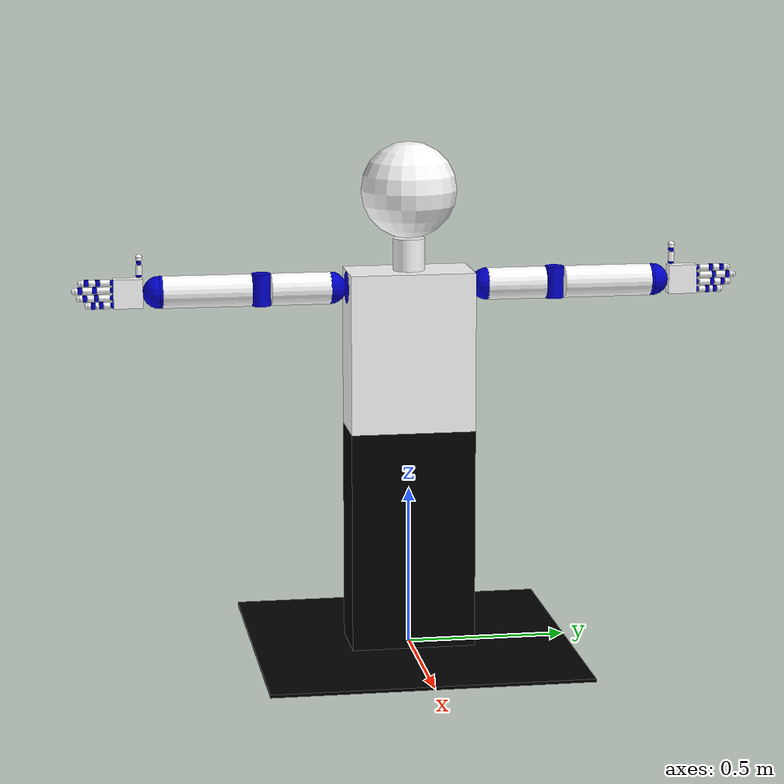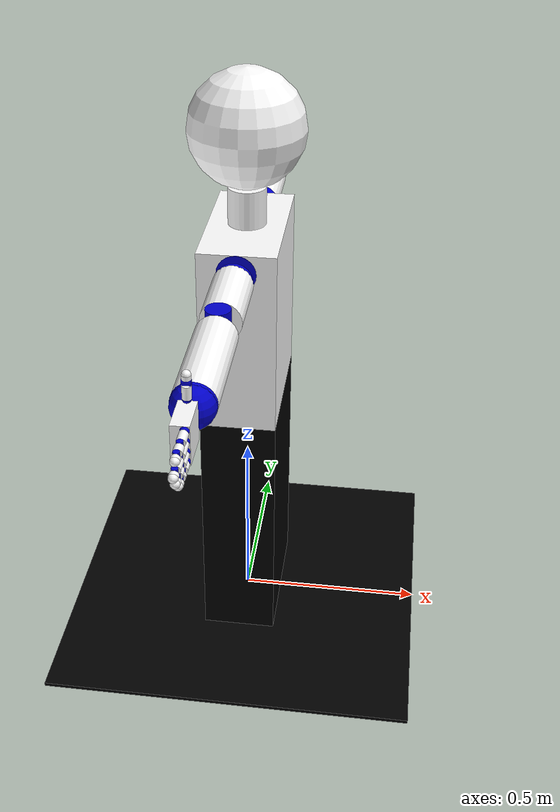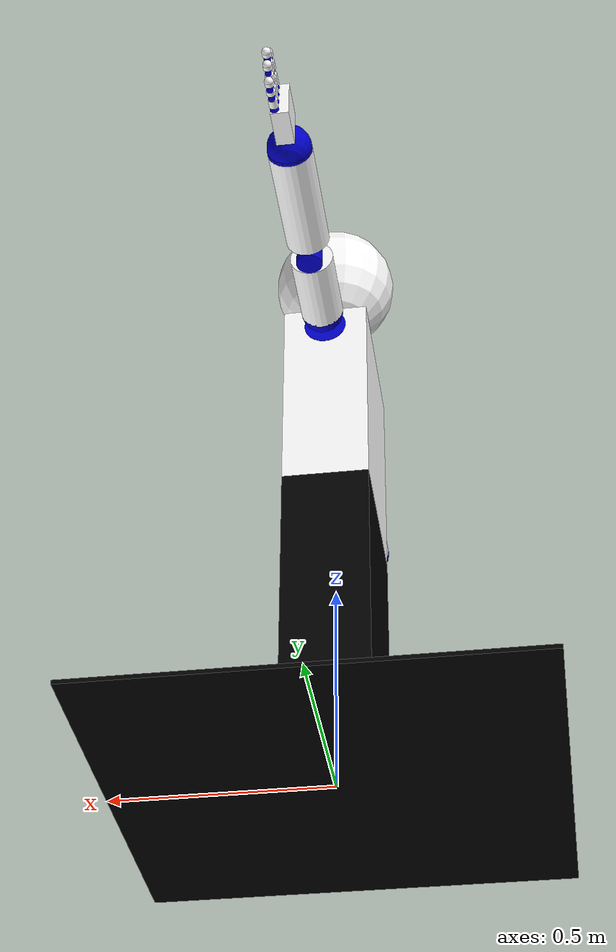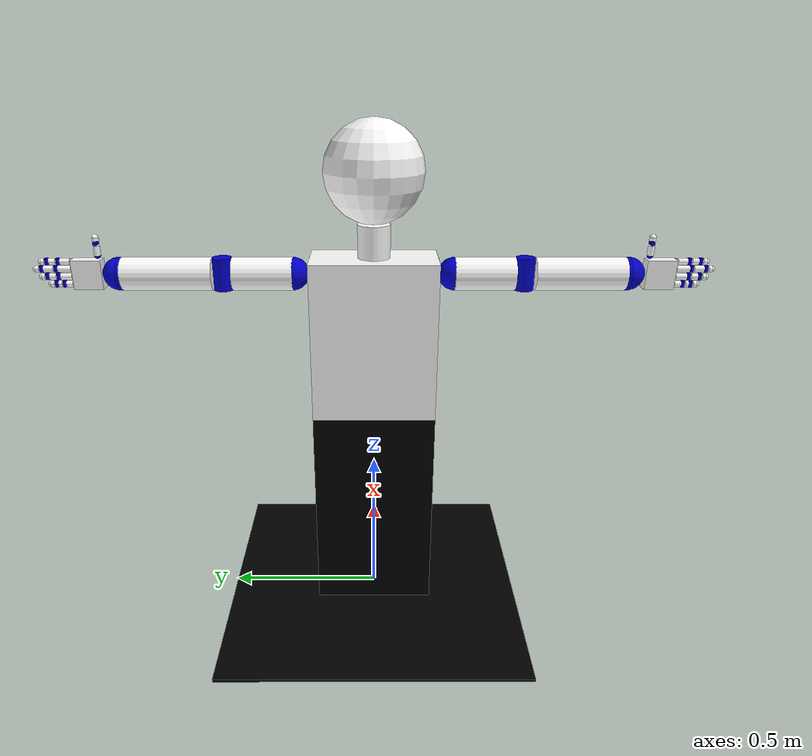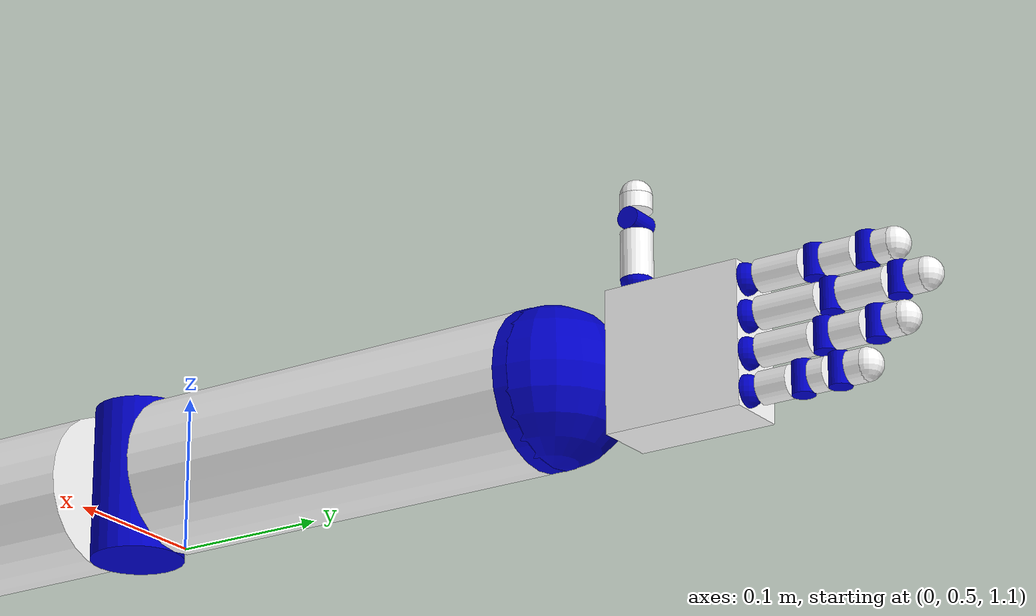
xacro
<?xml version="1.0"?>
<robot name="signbot"
       xmlns:xacro="http://www.ros.org/wiki/xacro" >

<xacro:include filename="$(find signbot_f_description)/urdf/macros.xacro" />

<!-- ****************************** MODEL **************************************** -->
<xacro:link_shape name="base_link" color="Black"  mass="${HEAVYWEIGHT}" >
                  <origin xyz="0 0 0" rpy="0 0 0" />
                  <box size="1 1 0.01" />
</xacro:link_shape>
<xacro:gazebo_black name="base_link" />

<!-- ************************** LEG TOSRO AND HEAD ******************************* -->
<xacro:torso_head parentl_name="base_link" />

<!-- ****************************** RIGHT SIDE ************************************ -->

<!-- ********************************** ARM *************************************** -->
  <xacro:arm side="r"
             axis_y_signal="-1"
             lower="0"
             upper="1" />
<!-- *********************************** PALM ************************************* -->
  <xacro:palm side="r"
              axis_y_signal="-1" />
<!-- ************************************ THUMB *********************************** -->
  <xacro:thumb_finger side="r"
                      axis_y_signal="-1"
                      lower="0"
                      upper="1" />
<!-- **************** FOUR FINGERS (INDEX, MIDDLE, THIRD, LITTLE) ****************** -->
  <xacro:generic_finger name= "index"
                        side="r"
                        axis_y_signal="-1"
                        lower="0"
                        upper="1"
                        ref_point="${(PALM_LENGTH/2)-GENERIC_FINGERS_RADIUS}"
                        bottom_length="${INDEX_BOTTOM_LENGTH}"
                        middle_length="${INDEX_MIDDLE_LENGTH}"
                        top_length="${INDEX_TOP_LENGTH}" />

  <xacro:generic_finger name= "middle"
                        side="r"
                        axis_y_signal="-1"
                        lower="0"
                        upper="1"
                        ref_point="${(PALM_LENGTH/2)-(GENERIC_FINGERS_RADIUS*2)-INTERVAL_BETWEEN_FINGERS-GENERIC_FINGERS_RADIUS}"
                        bottom_length="${MIDDLE_BOTTOM_LENGTH}"
                        middle_length="${MIDDLE_MIDDLE_LENGTH}"
                        top_length="${MIDDLE_TOP_LENGTH}" />

  <xacro:generic_finger name= "third"
                        side="r"
                        axis_y_signal="-1"
                        lower="0"
                        upper="1"
                        ref_point="${(-PALM_LENGTH/2)+(GENERIC_FINGERS_RADIUS*2)+INTERVAL_BETWEEN_FINGERS+GENERIC_FINGERS_RADIUS}"
                        bottom_length="${THIRD_BOTTOM_LENGTH}"
                        middle_length="${THIRD_MIDDLE_LENGTH}"
                        top_length="${THIRD_TOP_LENGTH}" />

  <xacro:generic_finger name= "little"
                        side="r"
                        axis_y_signal="-1"
                        lower="0"
                        upper="1"
                        ref_point="${(-PALM_LENGTH/2)+GENERIC_FINGERS_RADIUS}"
                        bottom_length="${LITTLE_BOTTOM_LENGTH}"
                        middle_length="${LITTLE_MIDDLE_LENGTH}"
                        top_length="${LITTLE_TOP_LENGTH}" />

<!-- ****************************** LEFT SIDE ************************************* -->

<!-- ********************************** ARM *************************************** -->
  <xacro:arm side="l"
             axis_y_signal="1"
             lower="1"
             upper="0" />
<!-- *********************************** PALM ************************************* -->
  <xacro:palm side="l"
              axis_y_signal="1" />
<!-- ************************************ THUMB *********************************** -->
  <xacro:thumb_finger side="l"
                      axis_y_signal="1"
                      lower="1"
                      upper="0" />
<!-- ********************* FOUR FINGERS(INDEX, MIDDLE, THIRD, LITTLE) ************* -->

  <xacro:generic_finger name= "index"
                        side="l"
                        axis_y_signal="1"
                        lower="1"
                        upper="0"
                        ref_point="${(PALM_LENGTH/2)-GENERIC_FINGERS_RADIUS}"
                        bottom_length="${INDEX_BOTTOM_LENGTH}"
                        middle_length="${INDEX_MIDDLE_LENGTH}"
                        top_length="${INDEX_TOP_LENGTH}" />

  <xacro:generic_finger name= "middle"
                        side="l"
                        axis_y_signal="1"
                        lower="1"
                        upper="0"
                        ref_point="${(PALM_LENGTH/2)-GENERIC_FINGERS_RADIUS*3-INTERVAL_BETWEEN_FINGERS}"
                        bottom_length="${MIDDLE_BOTTOM_LENGTH}"
                        middle_length="${MIDDLE_MIDDLE_LENGTH}"
                        top_length="${MIDDLE_TOP_LENGTH}" />

  <xacro:generic_finger name= "third"
                        side="l"
                        axis_y_signal="1"
                        lower="1"
                        upper="0"
                        ref_point="${(PALM_LENGTH/2)-GENERIC_FINGERS_RADIUS*5-INTERVAL_BETWEEN_FINGERS*2}"
                        bottom_length="${THIRD_BOTTOM_LENGTH}"
                        middle_length="${THIRD_MIDDLE_LENGTH}"
                        top_length="${THIRD_TOP_LENGTH}" />

  <xacro:generic_finger name= "little"
                        side="l"
                        axis_y_signal="1"
                        lower="1"
                        upper="0"
                        ref_point="${(PALM_LENGTH/2)-GENERIC_FINGERS_RADIUS*7-INTERVAL_BETWEEN_FINGERS*3}"
                        bottom_length="${LITTLE_BOTTOM_LENGTH}"
                        middle_length="${LITTLE_MIDDLE_LENGTH}"
                        top_length="${LITTLE_TOP_LENGTH}" />

</robot>

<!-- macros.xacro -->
<robot xmlns:xacro="http://www.ros.org/wiki/xacro">

<xacro:include filename="$(find signbot_f_description)/urdf/signbot.gazebo" />
<xacro:include filename="$(find signbot_f_description)/urdf/materials.xacro" />

<!-- **************************************** Constants ***************************************** -->
  <property name="PI" value="3.14159"/>
  <property name="TOLERANCE" value="0.001" />
  <property name="HEAVYWEIGHT" value="50" />
  <property name="LIGHTWEIGHT" value="1" />
<!-- Legs Constants -->
  <property name="LEG_DEPTH" value=".20" />
  <property name="LEG_LENGTH" value=".39"/>
  <property name="LEG_HEIGHT" value=".70"/>
<!-- Torso Constants -->
  <property name="TORSO_DEPTH" value=".20" />
  <property name="TORSO_LENGTH" value=".39"/>
  <property name="TORSO_HEIGHT" value=".50"/>
<!-- Neck constants -->
  <property name="NECK_RADIUS" value="0.05" />
  <property name="NECK_LENGTH" value="0.1"/>
<!-- head constants -->
  <property name="HEAD_RADIUS" value="0.15"/>
<!-- arm link properties -->
  <property name="SHOULDER_LENGTH" value="0.001" />
  <property name="ARM_RADIUS" value="0.05" />
  <property name="ARM_LENGTH" value="${0.20-(ELBOW_RADIUS/2)}" />
  <property name="ELBOW_RADIUS" value="0.03" />
  <property name="ELBOW_LENGTH" value="${2*ARM_RADIUS}" />
  <property name="FOREARM_LENGTH" value="${0.29-(ELBOW_RADIUS/2)}" />
<!-- wrist link properties -->
  <property name="WRIST_RADIUS" value="${ARM_RADIUS}" />
  <property name="WRIST_LENGTH" value="0.01" />
<!-- palm link properties -->
  <property name="PALM_DEPTH" value="0.04" />
  <property name="PALM_LENGTH" value="0.09"/>
  <property name="PALM_HEIGHT" value="0.09"/>
<!-- generic fingers properties -->
  <property name="GENERIC_FINGERS_RADIUS" value="0.01" />
  <property name="GENERIC_FINGERS_X" value="0.01" />
  <property name="INTERVAL_BETWEEN_FINGERS" value="0.003" />
  <property name="GENERIC_FINGER_KNUCKLE_RADIUS" value="0.007" />
<!-- thumb finger properties -->
  <property name="THUMB_BOTTOM_LENGTH" value="0.03" />
  <property name="THUMB_TOP_LENGTH" value="${GENERIC_FINGERS_RADIUS}" />
<!-- index finger properties -->
  <property name="INDEX_BOTTOM_LENGTH" value="0.03" />
  <property name="INDEX_MIDDLE_LENGTH" value="0.02" />
  <property name="INDEX_TOP_LENGTH" value="${GENERIC_FINGERS_RADIUS}" />
<!--  middle finger properties  -->
  <property name="MIDDLE_BOTTOM_LENGTH" value="0.04" />
  <property name="MIDDLE_MIDDLE_LENGTH" value="0.03" />
  <property name="MIDDLE_TOP_LENGTH" value="${GENERIC_FINGERS_RADIUS}" />
<!--  third finger properties  -->
  <property name="THIRD_BOTTOM_LENGTH" value="0.035" />
  <property name="THIRD_MIDDLE_LENGTH" value="0.02" />
  <property name="THIRD_TOP_LENGTH" value="${GENERIC_FINGERS_RADIUS}" />
<!--  little finger properties  -->
  <property name="LITTLE_BOTTOM_LENGTH" value="0.02" />
  <property name="LITTLE_MIDDLE_LENGTH" value="0.01" />
  <property name="LITTLE_TOP_LENGTH" value="${GENERIC_FINGERS_RADIUS}" />

<!-- ***************************/ Blocks of code ************************************************ -->
<xacro:macro name="inertial_matrix" params="mass">
  <inertial>
    <mass value="${mass}" />
    <inertia ixx="1.0" ixy="0.0" ixz="0.0" iyy="0.5" iyz="0.0" izz="1.0" />
  </inertial>
</xacro:macro>

<xacro:macro name="transmission_block" params="joint_name">
  <transmission name="tran1">
    <type>transmission_interface/SimpleTransmission</type>
    <joint name="${joint_name}">
      <hardwareInterface>PositionJointInterface</hardwareInterface>
    </joint>
    <actuator name="motor1">
      <hardwareInterface>PositionJointInterface</hardwareInterface>
      <mechanicalReduction>1</mechanicalReduction>
    </actuator>
  </transmission>
</xacro:macro>
<!-- ****************************** LINK SHAPES	************************************************* -->
<xacro:macro name="link_shape" params="name color *origin *shape mass">
  <link name="${name}">
    <visual>
       <xacro:insert_block name="origin" />
        <geometry>
            <xacro:insert_block name="shape" />
        </geometry>
        <material name="${color}" />
    </visual>
    <collision>
       <xacro:insert_block name="origin" />
        <geometry>
            <xacro:insert_block name="shape" />
        </geometry>
    </collision>
    <xacro:inertial_matrix mass="${mass}"/>
  </link>
</xacro:macro>

<!-- ************************************** TORSO_HEAD ****************************************** -->
<xacro:macro name="torso_head" params="parentl_name">
  <joint name="ankle_joint" type="fixed">
     <origin xyz="0 0 0" rpy="0 0 0" />
     <parent link="${parentl_name}"/>
     <child link="legs_link"/>
  </joint>

  <xacro:link_shape name="legs_link" color="Black"  mass="${HEAVYWEIGHT}" >
                    <origin xyz="0 0 ${LEG_HEIGHT/2}" rpy="0 0 0" />
                    <box size="${LEG_DEPTH} ${LEG_LENGTH} ${LEG_HEIGHT}" />
  </xacro:link_shape>
  <xacro:gazebo_black name="legs_link" />
  <!-- ************************************ TORSO LINK ****************************************** -->
  <joint name="waist_joint" type="fixed">
    <origin xyz="0 0 ${LEG_HEIGHT}" rpy="0 0 0" />
    <parent link="legs_link"/>
    <child link="torso_link"/>
  </joint>

  <xacro:link_shape name="torso_link" color="White" mass="${LIGHTWEIGHT}" >
        <origin xyz="0 0 ${TORSO_HEIGHT/2}" rpy="0 0 0" />
        <box size="${TORSO_DEPTH} ${TORSO_LENGTH} ${TORSO_HEIGHT}" />
  </xacro:link_shape>
  <xacro:gazebo_white name="torso_link" />
  <!-- ************************************** NECK LINK ***************************************** -->
  <joint name="neck_joint" type="fixed">
    <origin xyz="0 0 ${TORSO_HEIGHT}" rpy="0 0 0" />
    <parent link="torso_link"/>
    <child link="neck_link"/>
  </joint>

  <xacro:link_shape name="neck_link" color="White" mass="${LIGHTWEIGHT}">
        <origin xyz="0 0 ${NECK_LENGTH/2}" rpy="0 0 0" />
        <cylinder radius="${NECK_RADIUS}" length="${NECK_LENGTH}"/>
  </xacro:link_shape>
  <xacro:gazebo_white name="neck_link" />
  <!-- ************************************* HEAD LINK ****************************************** -->
  <joint name="head_joint" type="fixed">
     <origin xyz="0 0 ${NECK_LENGTH}" rpy="0 0 0" />
     <parent link="neck_link"/>
     <child link="head_link"/>
  </joint>

  <xacro:link_shape name="head_link" color="White" mass="${LIGHTWEIGHT}">
        <origin xyz="0 0 ${HEAD_RADIUS}" rpy="0 0 0" />
        <sphere radius="${HEAD_RADIUS}"/>
  </xacro:link_shape>
  <xacro:gazebo_white name="head_link" />

</xacro:macro>

<!-- ****************************************** ARMS ******************************************** -->
<xacro:macro name="arm" params="side axis_y_signal lower upper" >
<!-- ********************************* SHOULDER1 LINK ******************************************* -->
  <xacro:link_shape name="${side}_shoulder1_link" color="Blue" mass="${LIGHTWEIGHT}">
        <origin xyz="0 0 0" rpy="${PI/2} 0 0" />
         <cylinder radius="${ARM_RADIUS}" length="${SHOULDER_LENGTH}"/>
  </xacro:link_shape>
  <xacro:gazebo_blue name="${side}_shoulder1_link" />

  <joint name="${side}_shoulder1_joint" type="revolute">
    <parent link="torso_link"/>
    <child link="${side}_shoulder1_link"/>
    <origin xyz="0 ${axis_y_signal*((TORSO_LENGTH/2)+(SHOULDER_LENGTH/2))} ${TORSO_HEIGHT-ARM_RADIUS}"/>
    <axis xyz="0 1 0"/>
    <limit effort="1000.0" lower="0" upper="${PI/2}" velocity="0.5"/>
    <dynamics damping="50" friction="1"/>
  </joint>
<!-- ********************************* SHOULDER2 LINK **************************************** -->
  <xacro:link_shape name="${side}_shoulder2_link" color="Blue" mass="${LIGHTWEIGHT}">
        <origin xyz="0 0 0" rpy="0 0 0" />
        <sphere radius="${ARM_RADIUS}"/>
  </xacro:link_shape>
  <xacro:gazebo_blue name="${side}_shoulder2_link" />

  <joint name="${side}_shoulder2_joint" type="revolute">
    <parent link="${side}_shoulder1_link"/>
    <child link="${side}_shoulder2_link"/>
    <origin xyz="0 ${axis_y_signal*((SHOULDER_LENGTH/2)+ARM_RADIUS)} 0"/>
    <axis xyz="0 0 1"/>
    <limit effort="1000.0" lower="${lower*(-1*(PI/2))}" upper="${upper*(PI/2)}" velocity="0.5"/>
    <dynamics damping="50" friction="1"/>
  </joint>
<!-- ****************************************** ARM ****************************************** -->
  <xacro:link_shape name="${side}_arm_link" color="White" mass="${LIGHTWEIGHT}">
        <origin rpy="${PI/2} 0 0" xyz="0 ${axis_y_signal*(ARM_LENGTH/2)} 0"/>
        <cylinder radius="${ARM_RADIUS}" length="${ARM_LENGTH}"/>
  </xacro:link_shape>
  <xacro:gazebo_white name="${side}_arm_link" />

  <joint name="${side}_arm_joint" type="revolute">
    <parent link="${side}_shoulder2_link"/>
    <child link="${side}_arm_link"/>
    <origin xyz="0 0 0"/>
    <axis xyz="1 0 0"/>
    <limit effort="1000.0" lower="${(-1)*(PI/2)}" upper="${(PI/2)}" velocity="0.5"/>
    <dynamics damping="50" friction="1"/>
  </joint>
<!-- ****************************************** ELBOW ****************************************** -->
  <xacro:link_shape name="${side}_elbow_link" color="Blue" mass="${LIGHTWEIGHT}">
        <origin rpy="0 0 0" xyz="0 0 0"/>
        <cylinder radius="${ELBOW_RADIUS}" length="${ELBOW_LENGTH}"/>
  </xacro:link_shape>
  <xacro:gazebo_blue name="${side}_elbow_link" />

  <joint name="${side}_elbow1_joint" type="revolute">
    <parent link="${side}_arm_link"/>
    <child link="${side}_elbow_link"/>
    <origin xyz="0 ${axis_y_signal*(ARM_LENGTH+ELBOW_RADIUS)} 0"/>
    <axis xyz="0 0 1"/>
    <limit effort="1000.0" lower="${lower*-1*(PI/2)}" upper="${upper*(PI/2)}" velocity="0.5"/>
    <dynamics damping="50" friction="1"/>
  </joint>
<!-- ****************************************** FOREARM **************************************** -->
  <xacro:link_shape name="${side}_forearm_link" color="White" mass="${LIGHTWEIGHT}">
         <origin rpy="${PI/2} 0 0" xyz="0 ${axis_y_signal*(FOREARM_LENGTH/2)} 0"/>
         <cylinder radius="${ARM_RADIUS}" length="${FOREARM_LENGTH}"/>
  </xacro:link_shape>
  <xacro:gazebo_white name="${side}_forearm_link" />

  <joint name="${side}_elbow2_joint" type="fixed">
    <parent link="${side}_elbow_link"/>
    <child link="${side}_forearm_link"/>
    <origin xyz="0 ${axis_y_signal*(ELBOW_RADIUS)} 0"/>
  </joint>
<!-- ************************************** TRANSMICION ROS CONTROL **************************** -->
          <xacro:transmission_block joint_name="${side}_shoulder1_joint"/>
          <xacro:transmission_block joint_name="${side}_shoulder2_joint"/>
          <xacro:transmission_block joint_name="${side}_arm_joint"/>
          <xacro:transmission_block joint_name="${side}_elbow1_joint"/>

</xacro:macro>

<!-- ****************************************** PALM ******************************************** -->
<xacro:macro name="palm" params="side axis_y_signal">
<!-- ***************************************** WIRST1 ******************************************* -->
  <xacro:link_shape name="${side}_wirst1_l" color="Blue" mass="${LIGHTWEIGHT}">
        <origin xyz="0 0 0" rpy="${PI/2} 0 0" />
        <cylinder radius="${WRIST_RADIUS}" length="${WRIST_LENGTH}"/>
  </xacro:link_shape>
  <xacro:gazebo_blue name="${side}_wirst1_l" />

  <joint name="${side}_wirst1_j" type="revolute">
    <parent link="${side}_forearm_link"/>
    <child link="${side}_wirst1_l"/>
    <origin xyz="0 ${axis_y_signal*(FOREARM_LENGTH+(WRIST_LENGTH/2))} 0"/>
    <axis xyz="0 1 0"/>
    <limit effort="1000.0" lower="0" upper="${PI/2}" velocity="0.5"/>
    <dynamics damping="50" friction="1"/>
  </joint>
<!-- ***************************************** WIRST2 ******************************************* -->
  <xacro:link_shape name="${side}_wirst2_l" color="Blue" mass="${LIGHTWEIGHT}">
        <origin xyz="0 0 0" rpy="0 0 0" />
        <sphere radius="${WRIST_RADIUS}"/>
  </xacro:link_shape>
  <xacro:gazebo_blue name="${side}_wirst2_l" />

  <joint name="${side}_wirst2_j" type="revolute">
    <parent link="${side}_wirst1_l"/>
    <child link="${side}_wirst2_l"/>
    <origin xyz="0 ${axis_y_signal*(WRIST_LENGTH/2)} 0"/>
    <axis xyz="1 0 0"/>
    <limit effort="1000.0" lower="-${PI/4}" upper="${PI/4}" velocity="0.5"/>
    <dynamics damping="50" friction="1"/>
  </joint>
<!-- ****************************************** PALM LINK *************************************** -->
  <xacro:link_shape name="${side}_palm_l" color="White" mass="${LIGHTWEIGHT}">
        <origin rpy="${PI/2} 0 0" xyz="0 ${axis_y_signal*PALM_LENGTH/2} 0 "/>
        <box size="${PALM_DEPTH} ${PALM_LENGTH} ${PALM_HEIGHT}"/>
  </xacro:link_shape>
  <xacro:gazebo_white name="${side}_palm_l" />

  <joint name="${side}_wirst3_j" type="revolute">
    <parent link="${side}_wirst2_l"/>
    <child link="${side}_palm_l"/>
    <origin xyz="0 ${axis_y_signal*WRIST_RADIUS} 0"/>
    <axis xyz="0 0 1"/>
    <limit effort="1000.0" lower="-${PI/4}" upper="${PI/4}" velocity="0.5"/>
    <dynamics damping="50" friction="1"/>
  </joint>
<!--************************************** TRANSMICION ROS CONTROL ****************************** -->
   <xacro:transmission_block joint_name="${side}_wirst1_j"/>
   <xacro:transmission_block joint_name="${side}_wirst2_j"/>
   <xacro:transmission_block joint_name="${side}_wirst3_j"/>

</xacro:macro>

<!-- ********************************** THUMB FINGER ******************************************** -->
<!-- ****************************** BOT KNICKLE ************************************************* -->
<xacro:macro name="thumb_finger" params="side axis_y_signal lower upper ">
    <xacro:link_shape name="${side}_bottom_knuckle_thumb_l" color="Blue" mass="${LIGHTWEIGHT}">
        <origin rpy="0 0 0" xyz="0 0 0"/>
        <sphere radius="${GENERIC_FINGERS_RADIUS}" />
    </xacro:link_shape>
    <xacro:gazebo_blue name="${side}_bottom_knuckle_thumb_l" />

    <joint name="${side}_bottom_knuckle1_thumb_j" type="revolute">
        <parent link="${side}_palm_l"/>
        <child link="${side}_bottom_knuckle_thumb_l"/>
        <origin xyz="0 ${axis_y_signal*GENERIC_FINGERS_RADIUS} ${(PALM_LENGTH/2)+GENERIC_FINGERS_RADIUS+TOLERANCE}" />
        <axis xyz="1 0 0"/>
        <limit effort="1000.0" lower="-${lower*(PI/2)}" upper="${upper*(PI/2)}" velocity="0.5"/>
        <dynamics damping="50" friction="1"/>
    </joint>
<!-- ********************************** BOT THUMB ********************************************** -->
    <xacro:link_shape name="${side}_bottom_thumb_l" color="White" mass="${LIGHTWEIGHT}">
        <origin rpy="0 0 0" xyz="0 0 ${THUMB_BOTTOM_LENGTH/2}"/>
        <cylinder radius="${GENERIC_FINGERS_RADIUS}" length="${THUMB_BOTTOM_LENGTH}"/>
    </xacro:link_shape>
    <xacro:gazebo_white name="${side}_bottom_thumb_l" />

    <joint name="${side}_bottom_knuckle2_thumb_j" type="revolute">
        <parent link="${side}_bottom_knuckle_thumb_l"/>
        <child link="${side}_bottom_thumb_l"/>
        <origin xyz="0 0 0"/>
        <axis xyz="0 1 0"/>
        <limit effort="1000.0" lower="0" upper="${PI/2}" velocity="0.5"/>
        <dynamics damping="50" friction="1"/>
    </joint>
<!-- *********************************** MIDDLE KNUCKLE ****************************************** -->
      <xacro:link_shape name="${side}_middle_knuckle_thumb_l" color="Blue" mass="${LIGHTWEIGHT}" >
          <origin rpy="0 ${PI/2} 0" xyz="0 0 0"/>
          <cylinder radius="${GENERIC_FINGER_KNUCKLE_RADIUS}" length="${GENERIC_FINGERS_RADIUS*2}"/>
      </xacro:link_shape>
      <xacro:gazebo_blue name="${side}_middle_knuckle_thumb_l" />

      <joint name="${side}_top_knuckle_thumb_j" type="revolute">
          <parent link="${side}_bottom_thumb_l"/>
          <child link="${side}_middle_knuckle_thumb_l"/>
          <origin xyz="0 0 ${THUMB_BOTTOM_LENGTH+GENERIC_FINGER_KNUCKLE_RADIUS}"/>
          <axis xyz="1 0 0"/>
          <limit effort="1000.0" lower="-${lower*(PI/2)}" upper="${upper*(PI/2)}" velocity="0.5"/>
          <dynamics damping="50" friction="1"/>
      </joint>
<!-- ************************************ MIDDLE THUMB ****************************************** -->
    <xacro:link_shape name="${side}_middle_thumb_l" color="White" mass="${LIGHTWEIGHT}" >
        <origin rpy="0 0 0" xyz="0 0 ${THUMB_TOP_LENGTH/2}"/>
        <cylinder radius="${GENERIC_FINGERS_RADIUS}" length="${THUMB_TOP_LENGTH}"/>
    </xacro:link_shape>
    <xacro:gazebo_white name="${side}_middle_thumb_l" />

    <joint name="${side}_middle_thumb_j" type="fixed">
        <parent link="${side}_middle_knuckle_thumb_l"/>
        <child link="${side}_middle_thumb_l"/>
        <origin xyz="0 0 ${GENERIC_FINGER_KNUCKLE_RADIUS}"/>
    </joint>
<!-- ************************************ TOP THUMB ******************************************** -->
    <xacro:link_shape name="${side}_top_thumb_l" color="White" mass="${LIGHTWEIGHT}">
        <origin rpy="0 0 0" xyz="0 0 0"/>
        <sphere radius="${GENERIC_FINGERS_RADIUS}"/>
    </xacro:link_shape>
    <xacro:gazebo_white name="${side}_top_thumb_l" />

    <joint name="${side}_top_thumb_j" type="fixed">
        <parent link="${side}_middle_thumb_l"/>
        <child link="${side}_top_thumb_l"/>
        <origin xyz="0 0 ${THUMB_TOP_LENGTH}"/>
    </joint>
<!-- ************************************ TRANSMICION ROS CONTROL ******************************* -->
   <xacro:transmission_block joint_name="${side}_bottom_knuckle1_thumb_j"/>
   <xacro:transmission_block joint_name="${side}_bottom_knuckle2_thumb_j"/>
   <xacro:transmission_block joint_name="${side}_top_knuckle_thumb_j"/>

</xacro:macro>

<xacro:macro name="generic_finger"
        params="name side axis_y_signal lower upper ref_point bottom_length middle_length top_length">
<!-- ***************************************** BOT KNUCKLE *************************************** -->
    <xacro:link_shape name="${side}_bottom_knuckle_${name}_l" color="Blue" mass="${LIGHTWEIGHT}">
        <origin rpy="0 0 0" xyz="0 0 0"/>
        <sphere radius="${GENERIC_FINGERS_RADIUS}" />
    </xacro:link_shape>
    <xacro:gazebo_blue name="${side}_bottom_knuckle_${name}_l" />

    <joint name="${side}_bottom_knuckle_${name}_j" type="revolute">
        <parent link="${side}_palm_l"/>
        <child link="${side}_bottom_knuckle_${name}_l"/>
        <origin xyz="${GENERIC_FINGERS_X} ${axis_y_signal*PALM_HEIGHT} ${ref_point}"/>
        <axis xyz="0 0 1"/>
        <limit effort="1000.0" lower="-${lower*(PI/2)}" upper="${upper*(PI/2)}" velocity="0.5"/>
        <dynamics damping="50" friction="1"/>
    </joint>
<!-- ************************************* BOT FINGER ******************************************** -->
    <xacro:link_shape name="${side}_bottom_${name}_l" color="White" mass="${LIGHTWEIGHT}">
        <origin rpy="${PI/2} 0 0" xyz="0 ${axis_y_signal*(bottom_length/2)} 0"/>
        <cylinder radius="${GENERIC_FINGERS_RADIUS}" length="${bottom_length}"/>
    </xacro:link_shape>
    <xacro:gazebo_white name="${side}_bottom_${name}_l" />

    <joint name="${side}_knuckle_upper_${name}_j" type="fixed">
        <parent link="${side}_bottom_knuckle_${name}_l"/>
        <child link="${side}_bottom_${name}_l"/>
        <origin xyz="0 ${axis_y_signal*GENERIC_FINGERS_RADIUS} 0"/>
    </joint>
<!-- ***************************************** MIDDLE KNUCKLE ************************************** -->
  <xacro:link_shape name="${side}_middle_knuckle_${name}_l" color="Blue" mass="${LIGHTWEIGHT}">
      <origin rpy="0 0 0" xyz="0 0 0"/>
      <cylinder radius="${GENERIC_FINGER_KNUCKLE_RADIUS}" length="${GENERIC_FINGERS_RADIUS*2}"/>
  </xacro:link_shape>
  <xacro:gazebo_blue name="${side}_middle_knuckle_${name}_l" />

  <joint name="${side}_middle_knuckle_${name}_j" type="revolute">
      <parent link="${side}_bottom_${name}_l"/>
      <child link="${side}_middle_knuckle_${name}_l"/>
      <origin xyz="0 ${axis_y_signal*(bottom_length+GENERIC_FINGER_KNUCKLE_RADIUS)} 0"/>
      <axis xyz="0 0 1"/>
  <limit effort="1000.0" lower="-${lower*(PI/2)}" upper="${upper*(PI/2)}" velocity="0.5"/>
  <dynamics damping="50" friction="1"/>
  </joint>
<!-- ***************************************** MIDDLE FINGER ************************************** -->
    <xacro:link_shape name="${side}_middle_${name}_l" color="White" mass="${LIGHTWEIGHT}">
        <origin rpy="${PI/2} 0 0" xyz="0 ${axis_y_signal*(middle_length/2)} 0"/>
        <cylinder radius="${GENERIC_FINGERS_RADIUS}" length="${middle_length}"/>
    </xacro:link_shape>
    <xacro:gazebo_white name="${side}_middle_${name}_l" />

    <joint name="${side}_middle_${name}_j" type="fixed">
        <parent link="${side}_middle_knuckle_${name}_l"/>
        <child link="${side}_middle_${name}_l"/>
        <origin xyz="0 ${axis_y_signal*(GENERIC_FINGER_KNUCKLE_RADIUS)} 0"/>
    </joint>
<!-- ***************************************** TOP KNUCKLE **************************************** -->
    <xacro:link_shape name="${side}_top_knuckle_${name}_l" color="Blue" mass="${LIGHTWEIGHT}">
        <origin rpy="0 0 0" xyz="0 0 0"/>
        <cylinder radius="${GENERIC_FINGER_KNUCKLE_RADIUS}" length="${GENERIC_FINGERS_RADIUS*2}"/>
    </xacro:link_shape>
    <xacro:gazebo_blue name="${side}_top_knuckle_${name}_l" />

    <joint name="${side}_top_knuckle_${name}_j" type="revolute">
        <parent link="${side}_middle_${name}_l"/>
        <child link="${side}_top_knuckle_${name}_l"/>
        <origin xyz="0 ${axis_y_signal*(middle_length+GENERIC_FINGER_KNUCKLE_RADIUS)} 0"/>
        <axis xyz="0 0 1"/>
        <limit effort="1000.0" lower="-${lower*(PI/2)}" upper="${upper*(PI/2)}" velocity="0.5"/>
        <dynamics damping="50" friction="1"/>
    </joint>
<!-- ******************************************** TOP FINGER ************************************** -->
    <xacro:link_shape name="${side}_top_${name}_l" color="White" mass="${LIGHTWEIGHT}">
        <origin rpy="${PI/2} 0 0" xyz="0 ${axis_y_signal*(top_length/2)} 0"/>
        <cylinder radius="${GENERIC_FINGERS_RADIUS}" length="${top_length}"/>
    </xacro:link_shape>
    <xacro:gazebo_white name="${side}_top_${name}_l" />

    <joint name="${side}_top_${name}_j" type="fixed">
        <parent link="${side}_top_knuckle_${name}_l"/>
        <child link="${side}_top_${name}_l"/>
        <origin xyz="0 ${axis_y_signal*GENERIC_FINGER_KNUCKLE_RADIUS} 0"/>
    </joint>
<!-- ****************************************** TOPTOP FINGER ************************************* -->
    <xacro:link_shape name="${side}_toptop_${name}_l" color="White" mass="${LIGHTWEIGHT}">
        <origin rpy="0 0 0" xyz="0 0 0"/>
        <sphere radius="${GENERIC_FINGERS_RADIUS}"/>
    </xacro:link_shape>
    <xacro:gazebo_white name="${side}_toptop_${name}_l" />

    <joint name="${side}_toptop_${name}_j" type="fixed">
        <parent link="${side}_top_${name}_l"/>
        <child link="${side}_toptop_${name}_l"/>
        <origin xyz="0 ${axis_y_signal*GENERIC_FINGERS_RADIUS} 0"/>
    </joint>
<!-- ********************************** TRANSMICION ROS CONTROL *********************************** -->
   <xacro:transmission_block joint_name="${side}_bottom_knuckle_${name}_j"/>
   <xacro:transmission_block joint_name="${side}_middle_knuckle_${name}_j"/>
   <xacro:transmission_block joint_name="${side}_top_knuckle_${name}_j"/>

</xacro:macro>

</robot>

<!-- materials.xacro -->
<robot>

<!-- COLORS -->
    <material name="Black">
        <color rgba="0.0 0.0 0.0 1.0"/>
    </material>

    <material name="White">
        <color rgba="1.0 1.0 1.0 1.0"/>
    </material>

    <material name="Cyan">
        <color rgba="0 1 1 1"/>
    </material>

    <material name="Blue">
        <color rgba="0 0 .8 1"/>
    </material>

    <material name="Silver">
        <color rgba="0.75 0.75 0.75 1"/>
     </material>

    <material name="Grey">
      <color rgba="0.2 0.2 0.2 1.0"/>
    </material>

</robot>
